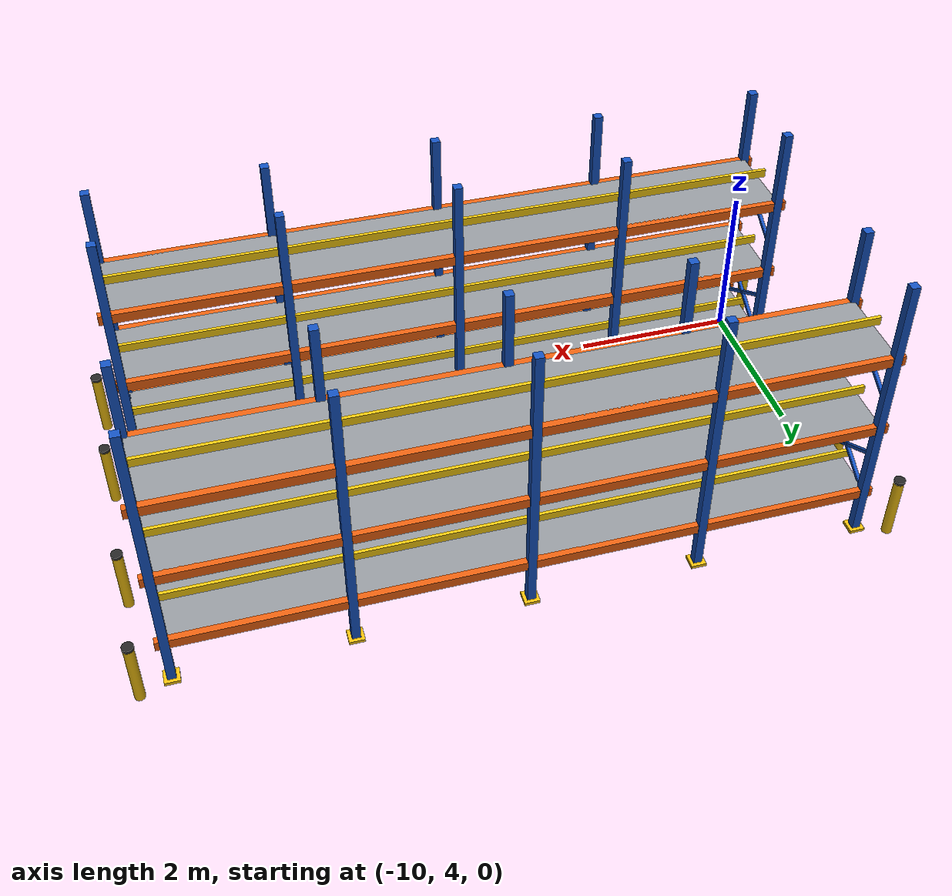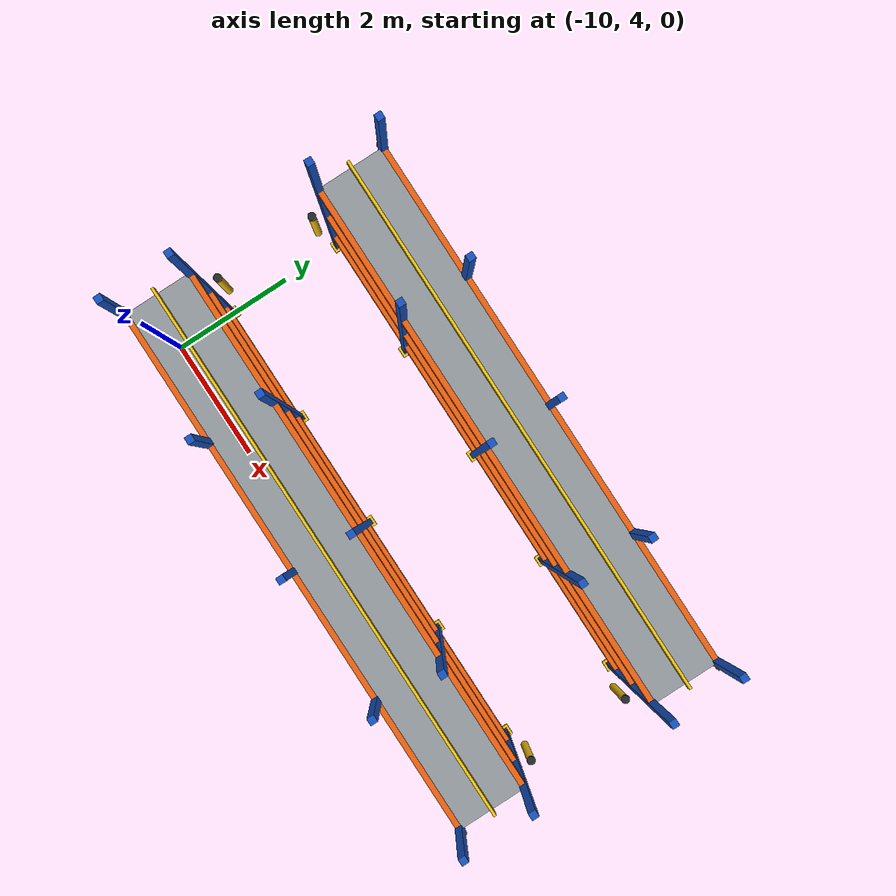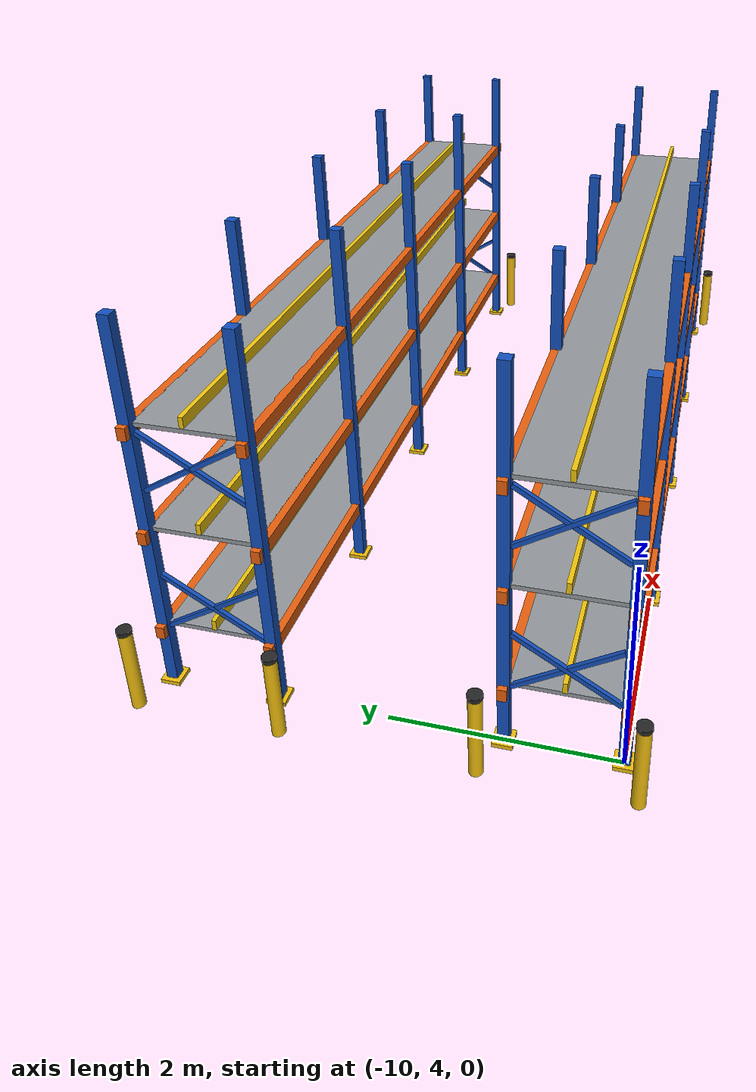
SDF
<sdf version="1.8">
 <world name="warehouse_3d">
  <model name="Rack_E">
   <static>true</static>
   <pose>-6.00 4.50 0 0 0 0</pose>
   <link name="col_0_0">
    <pose>-4.0000 -0.5000 1.8000 0.0000 0.0000 0.0000</pose>
    <collision name="col_0_0_col"><geometry><box><size>0.1000 0.1000 3.6000</size></box></geometry></collision>
    <visual name="col_0_0_vis">
     <geometry><box><size>0.1000 0.1000 3.6000</size></box></geometry>
     <material>
      <ambient>0.052 0.208 0.488 1.00</ambient>
      <diffuse>0.080 0.320 0.750 1.00</diffuse>
      <specular>0.15 0.15 0.15 1.0</specular>
     </material>
    </visual>
   </link>
   <link name="foot_0_0">
    <pose>-4.0000 -0.5000 0.0200 0.0000 0.0000 0.0000</pose>
    <collision name="foot_0_0_col"><geometry><box><size>0.1800 0.1800 0.0400</size></box></geometry></collision>
    <visual name="foot_0_0_vis">
     <geometry><box><size>0.1800 0.1800 0.0400</size></box></geometry>
     <material>
      <ambient>0.617 0.488 0.033 1.00</ambient>
      <diffuse>0.950 0.750 0.050 1.00</diffuse>
      <specular>0.15 0.15 0.15 1.0</specular>
     </material>
    </visual>
   </link>
   <link name="col_0_1">
    <pose>-4.0000 0.5000 1.8000 0.0000 0.0000 0.0000</pose>
    <collision name="col_0_1_col"><geometry><box><size>0.1000 0.1000 3.6000</size></box></geometry></collision>
    <visual name="col_0_1_vis">
     <geometry><box><size>0.1000 0.1000 3.6000</size></box></geometry>
     <material>
      <ambient>0.052 0.208 0.488 1.00</ambient>
      <diffuse>0.080 0.320 0.750 1.00</diffuse>
      <specular>0.15 0.15 0.15 1.0</specular>
     </material>
    </visual>
   </link>
   <link name="foot_0_1">
    <pose>-4.0000 0.5000 0.0200 0.0000 0.0000 0.0000</pose>
    <collision name="foot_0_1_col"><geometry><box><size>0.1800 0.1800 0.0400</size></box></geometry></collision>
    <visual name="foot_0_1_vis">
     <geometry><box><size>0.1800 0.1800 0.0400</size></box></geometry>
     <material>
      <ambient>0.617 0.488 0.033 1.00</ambient>
      <diffuse>0.950 0.750 0.050 1.00</diffuse>
      <specular>0.15 0.15 0.15 1.0</specular>
     </material>
    </visual>
   </link>
   <link name="col_1_0">
    <pose>-2.0000 -0.5000 1.8000 0.0000 0.0000 0.0000</pose>
    <collision name="col_1_0_col"><geometry><box><size>0.1000 0.1000 3.6000</size></box></geometry></collision>
    <visual name="col_1_0_vis">
     <geometry><box><size>0.1000 0.1000 3.6000</size></box></geometry>
     <material>
      <ambient>0.052 0.208 0.488 1.00</ambient>
      <diffuse>0.080 0.320 0.750 1.00</diffuse>
      <specular>0.15 0.15 0.15 1.0</specular>
     </material>
    </visual>
   </link>
   <link name="foot_1_0">
    <pose>-2.0000 -0.5000 0.0200 0.0000 0.0000 0.0000</pose>
    <collision name="foot_1_0_col"><geometry><box><size>0.1800 0.1800 0.0400</size></box></geometry></collision>
    <visual name="foot_1_0_vis">
     <geometry><box><size>0.1800 0.1800 0.0400</size></box></geometry>
     <material>
      <ambient>0.617 0.488 0.033 1.00</ambient>
      <diffuse>0.950 0.750 0.050 1.00</diffuse>
      <specular>0.15 0.15 0.15 1.0</specular>
     </material>
    </visual>
   </link>
   <link name="col_1_1">
    <pose>-2.0000 0.5000 1.8000 0.0000 0.0000 0.0000</pose>
    <collision name="col_1_1_col"><geometry><box><size>0.1000 0.1000 3.6000</size></box></geometry></collision>
    <visual name="col_1_1_vis">
     <geometry><box><size>0.1000 0.1000 3.6000</size></box></geometry>
     <material>
      <ambient>0.052 0.208 0.488 1.00</ambient>
      <diffuse>0.080 0.320 0.750 1.00</diffuse>
      <specular>0.15 0.15 0.15 1.0</specular>
     </material>
    </visual>
   </link>
   <link name="foot_1_1">
    <pose>-2.0000 0.5000 0.0200 0.0000 0.0000 0.0000</pose>
    <collision name="foot_1_1_col"><geometry><box><size>0.1800 0.1800 0.0400</size></box></geometry></collision>
    <visual name="foot_1_1_vis">
     <geometry><box><size>0.1800 0.1800 0.0400</size></box></geometry>
     <material>
      <ambient>0.617 0.488 0.033 1.00</ambient>
      <diffuse>0.950 0.750 0.050 1.00</diffuse>
      <specular>0.15 0.15 0.15 1.0</specular>
     </material>
    </visual>
   </link>
   <link name="col_2_0">
    <pose>0.0000 -0.5000 1.8000 0.0000 0.0000 0.0000</pose>
    <collision name="col_2_0_col"><geometry><box><size>0.1000 0.1000 3.6000</size></box></geometry></collision>
    <visual name="col_2_0_vis">
     <geometry><box><size>0.1000 0.1000 3.6000</size></box></geometry>
     <material>
      <ambient>0.052 0.208 0.488 1.00</ambient>
      <diffuse>0.080 0.320 0.750 1.00</diffuse>
      <specular>0.15 0.15 0.15 1.0</specular>
     </material>
    </visual>
   </link>
   <link name="foot_2_0">
    <pose>0.0000 -0.5000 0.0200 0.0000 0.0000 0.0000</pose>
    <collision name="foot_2_0_col"><geometry><box><size>0.1800 0.1800 0.0400</size></box></geometry></collision>
    <visual name="foot_2_0_vis">
     <geometry><box><size>0.1800 0.1800 0.0400</size></box></geometry>
     <material>
      <ambient>0.617 0.488 0.033 1.00</ambient>
      <diffuse>0.950 0.750 0.050 1.00</diffuse>
      <specular>0.15 0.15 0.15 1.0</specular>
     </material>
    </visual>
   </link>
   <link name="col_2_1">
    <pose>0.0000 0.5000 1.8000 0.0000 0.0000 0.0000</pose>
    <collision name="col_2_1_col"><geometry><box><size>0.1000 0.1000 3.6000</size></box></geometry></collision>
    <visual name="col_2_1_vis">
     <geometry><box><size>0.1000 0.1000 3.6000</size></box></geometry>
     <material>
      <ambient>0.052 0.208 0.488 1.00</ambient>
      <diffuse>0.080 0.320 0.750 1.00</diffuse>
      <specular>0.15 0.15 0.15 1.0</specular>
     </material>
    </visual>
   </link>
   <link name="foot_2_1">
    <pose>0.0000 0.5000 0.0200 0.0000 0.0000 0.0000</pose>
    <collision name="foot_2_1_col"><geometry><box><size>0.1800 0.1800 0.0400</size></box></geometry></collision>
    <visual name="foot_2_1_vis">
     <geometry><box><size>0.1800 0.1800 0.0400</size></box></geometry>
     <material>
      <ambient>0.617 0.488 0.033 1.00</ambient>
      <diffuse>0.950 0.750 0.050 1.00</diffuse>
      <specular>0.15 0.15 0.15 1.0</specular>
     </material>
    </visual>
   </link>
   <link name="col_3_0">
    <pose>2.0000 -0.5000 1.8000 0.0000 0.0000 0.0000</pose>
    <collision name="col_3_0_col"><geometry><box><size>0.1000 0.1000 3.6000</size></box></geometry></collision>
    <visual name="col_3_0_vis">
     <geometry><box><size>0.1000 0.1000 3.6000</size></box></geometry>
     <material>
      <ambient>0.052 0.208 0.488 1.00</ambient>
      <diffuse>0.080 0.320 0.750 1.00</diffuse>
      <specular>0.15 0.15 0.15 1.0</specular>
     </material>
    </visual>
   </link>
   <link name="foot_3_0">
    <pose>2.0000 -0.5000 0.0200 0.0000 0.0000 0.0000</pose>
    <collision name="foot_3_0_col"><geometry><box><size>0.1800 0.1800 0.0400</size></box></geometry></collision>
    <visual name="foot_3_0_vis">
     <geometry><box><size>0.1800 0.1800 0.0400</size></box></geometry>
     <material>
      <ambient>0.617 0.488 0.033 1.00</ambient>
      <diffuse>0.950 0.750 0.050 1.00</diffuse>
      <specular>0.15 0.15 0.15 1.0</specular>
     </material>
    </visual>
   </link>
   <link name="col_3_1">
    <pose>2.0000 0.5000 1.8000 0.0000 0.0000 0.0000</pose>
    <collision name="col_3_1_col"><geometry><box><size>0.1000 0.1000 3.6000</size></box></geometry></collision>
    <visual name="col_3_1_vis">
     <geometry><box><size>0.1000 0.1000 3.6000</size></box></geometry>
     <material>
      <ambient>0.052 0.208 0.488 1.00</ambient>
      <diffuse>0.080 0.320 0.750 1.00</diffuse>
      <specular>0.15 0.15 0.15 1.0</specular>
     </material>
    </visual>
   </link>
   <link name="foot_3_1">
    <pose>2.0000 0.5000 0.0200 0.0000 0.0000 0.0000</pose>
    <collision name="foot_3_1_col"><geometry><box><size>0.1800 0.1800 0.0400</size></box></geometry></collision>
    <visual name="foot_3_1_vis">
     <geometry><box><size>0.1800 0.1800 0.0400</size></box></geometry>
     <material>
      <ambient>0.617 0.488 0.033 1.00</ambient>
      <diffuse>0.950 0.750 0.050 1.00</diffuse>
      <specular>0.15 0.15 0.15 1.0</specular>
     </material>
    </visual>
   </link>
   <link name="col_4_0">
    <pose>4.0000 -0.5000 1.8000 0.0000 0.0000 0.0000</pose>
    <collision name="col_4_0_col"><geometry><box><size>0.1000 0.1000 3.6000</size></box></geometry></collision>
    <visual name="col_4_0_vis">
     <geometry><box><size>0.1000 0.1000 3.6000</size></box></geometry>
     <material>
      <ambient>0.052 0.208 0.488 1.00</ambient>
      <diffuse>0.080 0.320 0.750 1.00</diffuse>
      <specular>0.15 0.15 0.15 1.0</specular>
     </material>
    </visual>
   </link>
   <link name="foot_4_0">
    <pose>4.0000 -0.5000 0.0200 0.0000 0.0000 0.0000</pose>
    <collision name="foot_4_0_col"><geometry><box><size>0.1800 0.1800 0.0400</size></box></geometry></collision>
    <visual name="foot_4_0_vis">
     <geometry><box><size>0.1800 0.1800 0.0400</size></box></geometry>
     <material>
      <ambient>0.617 0.488 0.033 1.00</ambient>
      <diffuse>0.950 0.750 0.050 1.00</diffuse>
      <specular>0.15 0.15 0.15 1.0</specular>
     </material>
    </visual>
   </link>
   <link name="col_4_1">
    <pose>4.0000 0.5000 1.8000 0.0000 0.0000 0.0000</pose>
    <collision name="col_4_1_col"><geometry><box><size>0.1000 0.1000 3.6000</size></box></geometry></collision>
    <visual name="col_4_1_vis">
     <geometry><box><size>0.1000 0.1000 3.6000</size></box></geometry>
     <material>
      <ambient>0.052 0.208 0.488 1.00</ambient>
      <diffuse>0.080 0.320 0.750 1.00</diffuse>
      <specular>0.15 0.15 0.15 1.0</specular>
     </material>
    </visual>
   </link>
   <link name="foot_4_1">
    <pose>4.0000 0.5000 0.0200 0.0000 0.0000 0.0000</pose>
    <collision name="foot_4_1_col"><geometry><box><size>0.1800 0.1800 0.0400</size></box></geometry></collision>
    <visual name="foot_4_1_vis">
     <geometry><box><size>0.1800 0.1800 0.0400</size></box></geometry>
     <material>
      <ambient>0.617 0.488 0.033 1.00</ambient>
      <diffuse>0.950 0.750 0.050 1.00</diffuse>
      <specular>0.15 0.15 0.15 1.0</specular>
     </material>
    </visual>
   </link>
   <link name="x_brace_low_1_w">
    <pose>-4.0000 0.0000 0.9000 0.5500 0.0000 0.0000</pose>
    <visual name="x_brace_low_1_w_vis">
     <geometry><box><size>0.0400 1.0500 0.0400</size></box></geometry>
     <material>
      <ambient>0.052 0.208 0.488 1.00</ambient>
      <diffuse>0.080 0.320 0.750 1.00</diffuse>
      <specular>0.15 0.15 0.15 1.0</specular>
     </material>
    </visual>
   </link>
   <link name="x_brace_low_2_w">
    <pose>-4.0000 0.0000 0.9000 -0.5500 0.0000 0.0000</pose>
    <visual name="x_brace_low_2_w_vis">
     <geometry><box><size>0.0400 1.0500 0.0400</size></box></geometry>
     <material>
      <ambient>0.052 0.208 0.488 1.00</ambient>
      <diffuse>0.080 0.320 0.750 1.00</diffuse>
      <specular>0.15 0.15 0.15 1.0</specular>
     </material>
    </visual>
   </link>
   <link name="x_brace_hi_1_w">
    <pose>-4.0000 0.0000 2.3000 0.5500 0.0000 0.0000</pose>
    <visual name="x_brace_hi_1_w_vis">
     <geometry><box><size>0.0400 1.0500 0.0400</size></box></geometry>
     <material>
      <ambient>0.052 0.208 0.488 1.00</ambient>
      <diffuse>0.080 0.320 0.750 1.00</diffuse>
      <specular>0.15 0.15 0.15 1.0</specular>
     </material>
    </visual>
   </link>
   <link name="x_brace_hi_2_w">
    <pose>-4.0000 0.0000 2.3000 -0.5500 0.0000 0.0000</pose>
    <visual name="x_brace_hi_2_w_vis">
     <geometry><box><size>0.0400 1.0500 0.0400</size></box></geometry>
     <material>
      <ambient>0.052 0.208 0.488 1.00</ambient>
      <diffuse>0.080 0.320 0.750 1.00</diffuse>
      <specular>0.15 0.15 0.15 1.0</specular>
     </material>
    </visual>
   </link>
   <link name="x_brace_low_1_e">
    <pose>4.0000 0.0000 0.9000 0.5500 0.0000 0.0000</pose>
    <visual name="x_brace_low_1_e_vis">
     <geometry><box><size>0.0400 1.0500 0.0400</size></box></geometry>
     <material>
      <ambient>0.052 0.208 0.488 1.00</ambient>
      <diffuse>0.080 0.320 0.750 1.00</diffuse>
      <specular>0.15 0.15 0.15 1.0</specular>
     </material>
    </visual>
   </link>
   <link name="x_brace_low_2_e">
    <pose>4.0000 0.0000 0.9000 -0.5500 0.0000 0.0000</pose>
    <visual name="x_brace_low_2_e_vis">
     <geometry><box><size>0.0400 1.0500 0.0400</size></box></geometry>
     <material>
      <ambient>0.052 0.208 0.488 1.00</ambient>
      <diffuse>0.080 0.320 0.750 1.00</diffuse>
      <specular>0.15 0.15 0.15 1.0</specular>
     </material>
    </visual>
   </link>
   <link name="x_brace_hi_1_e">
    <pose>4.0000 0.0000 2.3000 0.5500 0.0000 0.0000</pose>
    <visual name="x_brace_hi_1_e_vis">
     <geometry><box><size>0.0400 1.0500 0.0400</size></box></geometry>
     <material>
      <ambient>0.052 0.208 0.488 1.00</ambient>
      <diffuse>0.080 0.320 0.750 1.00</diffuse>
      <specular>0.15 0.15 0.15 1.0</specular>
     </material>
    </visual>
   </link>
   <link name="x_brace_hi_2_e">
    <pose>4.0000 0.0000 2.3000 -0.5500 0.0000 0.0000</pose>
    <visual name="x_brace_hi_2_e_vis">
     <geometry><box><size>0.0400 1.0500 0.0400</size></box></geometry>
     <material>
      <ambient>0.052 0.208 0.488 1.00</ambient>
      <diffuse>0.080 0.320 0.750 1.00</diffuse>
      <specular>0.15 0.15 0.15 1.0</specular>
     </material>
    </visual>
   </link>
   <link name="beam_front_0">
    <pose>0.0000 0.5000 0.6000 0.0000 0.0000 0.0000</pose>
    <collision name="beam_front_0_col">
     <geometry><box><size>8.2000 0.0800 0.1200</size></box></geometry>
    </collision>
    <visual name="beam_front_0_vis">
     <geometry><box><size>8.2000 0.0800 0.1200</size></box></geometry>
     <material>
      <ambient>0.598 0.247 0.039 1.00</ambient>
      <diffuse>0.920 0.380 0.060 1.00</diffuse>
      <specular>0.15 0.15 0.15 1.0</specular>
     </material>
    </visual>
   </link>
   <link name="beam_rear_0">
    <pose>0.0000 -0.5000 0.6000 0.0000 0.0000 0.0000</pose>
    <collision name="beam_rear_0_col">
     <geometry><box><size>8.2000 0.0800 0.1200</size></box></geometry>
    </collision>
    <visual name="beam_rear_0_vis">
     <geometry><box><size>8.2000 0.0800 0.1200</size></box></geometry>
     <material>
      <ambient>0.598 0.247 0.039 1.00</ambient>
      <diffuse>0.920 0.380 0.060 1.00</diffuse>
      <specular>0.15 0.15 0.15 1.0</specular>
     </material>
    </visual>
   </link>
   <link name="deck_0">
    <pose>0.0000 0.0000 0.6400 0.0000 0.0000 0.0000</pose>
    <collision name="deck_0_col"><geometry><box><size>8.0000 0.9400 0.0400</size></box></geometry></collision>
    <visual name="deck_0_vis">
     <geometry><box><size>8.0000 0.9400 0.0400</size></box></geometry>
     <material>
      <ambient>0.377 0.390 0.403 1.00</ambient>
      <diffuse>0.580 0.600 0.620 1.00</diffuse>
      <specular>0.15 0.15 0.15 1.0</specular>
     </material>
    </visual>
   </link>
   <link name="backstop_0">
    <pose>0.0000 0.0000 0.7500 0.0000 0.0000 0.0000</pose>
    <visual name="backstop_0_vis">
     <geometry><box><size>8.1000 0.0400 0.1000</size></box></geometry>
     <material>
      <ambient>0.617 0.507 0.033 1.00</ambient>
      <diffuse>0.950 0.780 0.050 1.00</diffuse>
      <specular>0.15 0.15 0.15 1.0</specular>
     </material>
    </visual>
   </link>
   <link name="beam_front_1">
    <pose>0.0000 0.5000 1.6000 0.0000 0.0000 0.0000</pose>
    <collision name="beam_front_1_col">
     <geometry><box><size>8.2000 0.0800 0.1200</size></box></geometry>
    </collision>
    <visual name="beam_front_1_vis">
     <geometry><box><size>8.2000 0.0800 0.1200</size></box></geometry>
     <material>
      <ambient>0.598 0.247 0.039 1.00</ambient>
      <diffuse>0.920 0.380 0.060 1.00</diffuse>
      <specular>0.15 0.15 0.15 1.0</specular>
     </material>
    </visual>
   </link>
   <link name="beam_rear_1">
    <pose>0.0000 -0.5000 1.6000 0.0000 0.0000 0.0000</pose>
    <collision name="beam_rear_1_col">
     <geometry><box><size>8.2000 0.0800 0.1200</size></box></geometry>
    </collision>
    <visual name="beam_rear_1_vis">
     <geometry><box><size>8.2000 0.0800 0.1200</size></box></geometry>
     <material>
      <ambient>0.598 0.247 0.039 1.00</ambient>
      <diffuse>0.920 0.380 0.060 1.00</diffuse>
      <specular>0.15 0.15 0.15 1.0</specular>
     </material>
    </visual>
   </link>
   <link name="deck_1">
    <pose>0.0000 0.0000 1.6400 0.0000 0.0000 0.0000</pose>
    <collision name="deck_1_col"><geometry><box><size>8.0000 0.9400 0.0400</size></box></geometry></collision>
    <visual name="deck_1_vis">
     <geometry><box><size>8.0000 0.9400 0.0400</size></box></geometry>
     <material>
      <ambient>0.377 0.390 0.403 1.00</ambient>
      <diffuse>0.580 0.600 0.620 1.00</diffuse>
      <specular>0.15 0.15 0.15 1.0</specular>
     </material>
    </visual>
   </link>
   <link name="backstop_1">
    <pose>0.0000 0.0000 1.7500 0.0000 0.0000 0.0000</pose>
    <visual name="backstop_1_vis">
     <geometry><box><size>8.1000 0.0400 0.1000</size></box></geometry>
     <material>
      <ambient>0.617 0.507 0.033 1.00</ambient>
      <diffuse>0.950 0.780 0.050 1.00</diffuse>
      <specular>0.15 0.15 0.15 1.0</specular>
     </material>
    </visual>
   </link>
   <link name="beam_front_2">
    <pose>0.0000 0.5000 2.6000 0.0000 0.0000 0.0000</pose>
    <collision name="beam_front_2_col">
     <geometry><box><size>8.2000 0.0800 0.1200</size></box></geometry>
    </collision>
    <visual name="beam_front_2_vis">
     <geometry><box><size>8.2000 0.0800 0.1200</size></box></geometry>
     <material>
      <ambient>0.598 0.247 0.039 1.00</ambient>
      <diffuse>0.920 0.380 0.060 1.00</diffuse>
      <specular>0.15 0.15 0.15 1.0</specular>
     </material>
    </visual>
   </link>
   <link name="beam_rear_2">
    <pose>0.0000 -0.5000 2.6000 0.0000 0.0000 0.0000</pose>
    <collision name="beam_rear_2_col">
     <geometry><box><size>8.2000 0.0800 0.1200</size></box></geometry>
    </collision>
    <visual name="beam_rear_2_vis">
     <geometry><box><size>8.2000 0.0800 0.1200</size></box></geometry>
     <material>
      <ambient>0.598 0.247 0.039 1.00</ambient>
      <diffuse>0.920 0.380 0.060 1.00</diffuse>
      <specular>0.15 0.15 0.15 1.0</specular>
     </material>
    </visual>
   </link>
   <link name="deck_2">
    <pose>0.0000 0.0000 2.6400 0.0000 0.0000 0.0000</pose>
    <collision name="deck_2_col"><geometry><box><size>8.0000 0.9400 0.0400</size></box></geometry></collision>
    <visual name="deck_2_vis">
     <geometry><box><size>8.0000 0.9400 0.0400</size></box></geometry>
     <material>
      <ambient>0.377 0.390 0.403 1.00</ambient>
      <diffuse>0.580 0.600 0.620 1.00</diffuse>
      <specular>0.15 0.15 0.15 1.0</specular>
     </material>
    </visual>
   </link>
   <link name="backstop_2">
    <pose>0.0000 0.0000 2.7500 0.0000 0.0000 0.0000</pose>
    <visual name="backstop_2_vis">
     <geometry><box><size>8.1000 0.0400 0.1000</size></box></geometry>
     <material>
      <ambient>0.617 0.507 0.033 1.00</ambient>
      <diffuse>0.950 0.780 0.050 1.00</diffuse>
      <specular>0.15 0.15 0.15 1.0</specular>
     </material>
    </visual>
   </link>
   <link name="bollard_0">
    <pose>-4.3500 -0.6500 0.4000 0.0000 0.0000 0.0000</pose>
    <collision name="bollard_0_col">
     <geometry><cylinder><radius>0.0600</radius><length>0.8000</length></cylinder></geometry>
    </collision>
    <visual name="bollard_0_vis">
     <geometry><cylinder><radius>0.0600</radius><length>0.8000</length></cylinder></geometry>
     <material>
      <ambient>0.617 0.488 0.033 1.00</ambient>
      <diffuse>0.950 0.750 0.050 1.00</diffuse>
      <specular>0.2 0.2 0.2 1.0</specular>
     </material>
    </visual>
   </link>
   <link name="bollard_cap_0">
    <pose>-4.3500 -0.6500 0.8200 0.0000 0.0000 0.0000</pose>
    <collision name="bollard_cap_0_col">
     <geometry><cylinder><radius>0.0650</radius><length>0.0400</length></cylinder></geometry>
    </collision>
    <visual name="bollard_cap_0_vis">
     <geometry><cylinder><radius>0.0650</radius><length>0.0400</length></cylinder></geometry>
     <material>
      <ambient>0.098 0.098 0.098 1.00</ambient>
      <diffuse>0.150 0.150 0.150 1.00</diffuse>
      <specular>0.2 0.2 0.2 1.0</specular>
     </material>
    </visual>
   </link>
   <link name="bollard_1">
    <pose>-4.3500 0.6500 0.4000 0.0000 0.0000 0.0000</pose>
    <collision name="bollard_1_col">
     <geometry><cylinder><radius>0.0600</radius><length>0.8000</length></cylinder></geometry>
    </collision>
    <visual name="bollard_1_vis">
     <geometry><cylinder><radius>0.0600</radius><length>0.8000</length></cylinder></geometry>
     <material>
      <ambient>0.617 0.488 0.033 1.00</ambient>
      <diffuse>0.950 0.750 0.050 1.00</diffuse>
      <specular>0.2 0.2 0.2 1.0</specular>
     </material>
    </visual>
   </link>
   <link name="bollard_cap_1">
    <pose>-4.3500 0.6500 0.8200 0.0000 0.0000 0.0000</pose>
    <collision name="bollard_cap_1_col">
     <geometry><cylinder><radius>0.0650</radius><length>0.0400</length></cylinder></geometry>
    </collision>
    <visual name="bollard_cap_1_vis">
     <geometry><cylinder><radius>0.0650</radius><length>0.0400</length></cylinder></geometry>
     <material>
      <ambient>0.098 0.098 0.098 1.00</ambient>
      <diffuse>0.150 0.150 0.150 1.00</diffuse>
      <specular>0.2 0.2 0.2 1.0</specular>
     </material>
    </visual>
   </link>
   <link name="bollard_2">
    <pose>4.3500 -0.6500 0.4000 0.0000 0.0000 0.0000</pose>
    <collision name="bollard_2_col">
     <geometry><cylinder><radius>0.0600</radius><length>0.8000</length></cylinder></geometry>
    </collision>
    <visual name="bollard_2_vis">
     <geometry><cylinder><radius>0.0600</radius><length>0.8000</length></cylinder></geometry>
     <material>
      <ambient>0.617 0.488 0.033 1.00</ambient>
      <diffuse>0.950 0.750 0.050 1.00</diffuse>
      <specular>0.2 0.2 0.2 1.0</specular>
     </material>
    </visual>
   </link>
   <link name="bollard_cap_2">
    <pose>4.3500 -0.6500 0.8200 0.0000 0.0000 0.0000</pose>
    <collision name="bollard_cap_2_col">
     <geometry><cylinder><radius>0.0650</radius><length>0.0400</length></cylinder></geometry>
    </collision>
    <visual name="bollard_cap_2_vis">
     <geometry><cylinder><radius>0.0650</radius><length>0.0400</length></cylinder></geometry>
     <material>
      <ambient>0.098 0.098 0.098 1.00</ambient>
      <diffuse>0.150 0.150 0.150 1.00</diffuse>
      <specular>0.2 0.2 0.2 1.0</specular>
     </material>
    </visual>
   </link>
   <link name="bollard_3">
    <pose>4.3500 0.6500 0.4000 0.0000 0.0000 0.0000</pose>
    <collision name="bollard_3_col">
     <geometry><cylinder><radius>0.0600</radius><length>0.8000</length></cylinder></geometry>
    </collision>
    <visual name="bollard_3_vis">
     <geometry><cylinder><radius>0.0600</radius><length>0.8000</length></cylinder></geometry>
     <material>
      <ambient>0.617 0.488 0.033 1.00</ambient>
      <diffuse>0.950 0.750 0.050 1.00</diffuse>
      <specular>0.2 0.2 0.2 1.0</specular>
     </material>
    </visual>
   </link>
   <link name="bollard_cap_3">
    <pose>4.3500 0.6500 0.8200 0.0000 0.0000 0.0000</pose>
    <collision name="bollard_cap_3_col">
     <geometry><cylinder><radius>0.0650</radius><length>0.0400</length></cylinder></geometry>
    </collision>
    <visual name="bollard_cap_3_vis">
     <geometry><cylinder><radius>0.0650</radius><length>0.0400</length></cylinder></geometry>
     <material>
      <ambient>0.098 0.098 0.098 1.00</ambient>
      <diffuse>0.150 0.150 0.150 1.00</diffuse>
      <specular>0.2 0.2 0.2 1.0</specular>
     </material>
    </visual>
   </link>
  </model>
  <model name="Rack_F">
   <static>true</static>
   <pose>-6.00 7.50 0 0 0 0</pose>
   <link name="col_0_0">
    <pose>-4.0000 -0.5000 1.8000 0.0000 0.0000 0.0000</pose>
    <collision name="col_0_0_col"><geometry><box><size>0.1000 0.1000 3.6000</size></box></geometry></collision>
    <visual name="col_0_0_vis">
     <geometry><box><size>0.1000 0.1000 3.6000</size></box></geometry>
     <material>
      <ambient>0.052 0.208 0.488 1.00</ambient>
      <diffuse>0.080 0.320 0.750 1.00</diffuse>
      <specular>0.15 0.15 0.15 1.0</specular>
     </material>
    </visual>
   </link>
   <link name="foot_0_0">
    <pose>-4.0000 -0.5000 0.0200 0.0000 0.0000 0.0000</pose>
    <collision name="foot_0_0_col"><geometry><box><size>0.1800 0.1800 0.0400</size></box></geometry></collision>
    <visual name="foot_0_0_vis">
     <geometry><box><size>0.1800 0.1800 0.0400</size></box></geometry>
     <material>
      <ambient>0.617 0.488 0.033 1.00</ambient>
      <diffuse>0.950 0.750 0.050 1.00</diffuse>
      <specular>0.15 0.15 0.15 1.0</specular>
     </material>
    </visual>
   </link>
   <link name="col_0_1">
    <pose>-4.0000 0.5000 1.8000 0.0000 0.0000 0.0000</pose>
    <collision name="col_0_1_col"><geometry><box><size>0.1000 0.1000 3.6000</size></box></geometry></collision>
    <visual name="col_0_1_vis">
     <geometry><box><size>0.1000 0.1000 3.6000</size></box></geometry>
     <material>
      <ambient>0.052 0.208 0.488 1.00</ambient>
      <diffuse>0.080 0.320 0.750 1.00</diffuse>
      <specular>0.15 0.15 0.15 1.0</specular>
     </material>
    </visual>
   </link>
   <link name="foot_0_1">
    <pose>-4.0000 0.5000 0.0200 0.0000 0.0000 0.0000</pose>
    <collision name="foot_0_1_col"><geometry><box><size>0.1800 0.1800 0.0400</size></box></geometry></collision>
    <visual name="foot_0_1_vis">
     <geometry><box><size>0.1800 0.1800 0.0400</size></box></geometry>
     <material>
      <ambient>0.617 0.488 0.033 1.00</ambient>
      <diffuse>0.950 0.750 0.050 1.00</diffuse>
      <specular>0.15 0.15 0.15 1.0</specular>
     </material>
    </visual>
   </link>
   <link name="col_1_0">
    <pose>-2.0000 -0.5000 1.8000 0.0000 0.0000 0.0000</pose>
    <collision name="col_1_0_col"><geometry><box><size>0.1000 0.1000 3.6000</size></box></geometry></collision>
    <visual name="col_1_0_vis">
     <geometry><box><size>0.1000 0.1000 3.6000</size></box></geometry>
     <material>
      <ambient>0.052 0.208 0.488 1.00</ambient>
      <diffuse>0.080 0.320 0.750 1.00</diffuse>
      <specular>0.15 0.15 0.15 1.0</specular>
     </material>
    </visual>
   </link>
   <link name="foot_1_0">
    <pose>-2.0000 -0.5000 0.0200 0.0000 0.0000 0.0000</pose>
    <collision name="foot_1_0_col"><geometry><box><size>0.1800 0.1800 0.0400</size></box></geometry></collision>
    <visual name="foot_1_0_vis">
     <geometry><box><size>0.1800 0.1800 0.0400</size></box></geometry>
     <material>
      <ambient>0.617 0.488 0.033 1.00</ambient>
      <diffuse>0.950 0.750 0.050 1.00</diffuse>
      <specular>0.15 0.15 0.15 1.0</specular>
     </material>
    </visual>
   </link>
   <link name="col_1_1">
    <pose>-2.0000 0.5000 1.8000 0.0000 0.0000 0.0000</pose>
    <collision name="col_1_1_col"><geometry><box><size>0.1000 0.1000 3.6000</size></box></geometry></collision>
    <visual name="col_1_1_vis">
     <geometry><box><size>0.1000 0.1000 3.6000</size></box></geometry>
     <material>
      <ambient>0.052 0.208 0.488 1.00</ambient>
      <diffuse>0.080 0.320 0.750 1.00</diffuse>
      <specular>0.15 0.15 0.15 1.0</specular>
     </material>
    </visual>
   </link>
   <link name="foot_1_1">
    <pose>-2.0000 0.5000 0.0200 0.0000 0.0000 0.0000</pose>
    <collision name="foot_1_1_col"><geometry><box><size>0.1800 0.1800 0.0400</size></box></geometry></collision>
    <visual name="foot_1_1_vis">
     <geometry><box><size>0.1800 0.1800 0.0400</size></box></geometry>
     <material>
      <ambient>0.617 0.488 0.033 1.00</ambient>
      <diffuse>0.950 0.750 0.050 1.00</diffuse>
      <specular>0.15 0.15 0.15 1.0</specular>
     </material>
    </visual>
   </link>
   <link name="col_2_0">
    <pose>0.0000 -0.5000 1.8000 0.0000 0.0000 0.0000</pose>
    <collision name="col_2_0_col"><geometry><box><size>0.1000 0.1000 3.6000</size></box></geometry></collision>
    <visual name="col_2_0_vis">
     <geometry><box><size>0.1000 0.1000 3.6000</size></box></geometry>
     <material>
      <ambient>0.052 0.208 0.488 1.00</ambient>
      <diffuse>0.080 0.320 0.750 1.00</diffuse>
      <specular>0.15 0.15 0.15 1.0</specular>
     </material>
    </visual>
   </link>
   <link name="foot_2_0">
    <pose>0.0000 -0.5000 0.0200 0.0000 0.0000 0.0000</pose>
    <collision name="foot_2_0_col"><geometry><box><size>0.1800 0.1800 0.0400</size></box></geometry></collision>
    <visual name="foot_2_0_vis">
     <geometry><box><size>0.1800 0.1800 0.0400</size></box></geometry>
     <material>
      <ambient>0.617 0.488 0.033 1.00</ambient>
      <diffuse>0.950 0.750 0.050 1.00</diffuse>
      <specular>0.15 0.15 0.15 1.0</specular>
     </material>
    </visual>
   </link>
   <link name="col_2_1">
    <pose>0.0000 0.5000 1.8000 0.0000 0.0000 0.0000</pose>
    <collision name="col_2_1_col"><geometry><box><size>0.1000 0.1000 3.6000</size></box></geometry></collision>
    <visual name="col_2_1_vis">
     <geometry><box><size>0.1000 0.1000 3.6000</size></box></geometry>
     <material>
      <ambient>0.052 0.208 0.488 1.00</ambient>
      <diffuse>0.080 0.320 0.750 1.00</diffuse>
      <specular>0.15 0.15 0.15 1.0</specular>
     </material>
    </visual>
   </link>
   <link name="foot_2_1">
    <pose>0.0000 0.5000 0.0200 0.0000 0.0000 0.0000</pose>
    <collision name="foot_2_1_col"><geometry><box><size>0.1800 0.1800 0.0400</size></box></geometry></collision>
    <visual name="foot_2_1_vis">
     <geometry><box><size>0.1800 0.1800 0.0400</size></box></geometry>
     <material>
      <ambient>0.617 0.488 0.033 1.00</ambient>
      <diffuse>0.950 0.750 0.050 1.00</diffuse>
      <specular>0.15 0.15 0.15 1.0</specular>
     </material>
    </visual>
   </link>
   <link name="col_3_0">
    <pose>2.0000 -0.5000 1.8000 0.0000 0.0000 0.0000</pose>
    <collision name="col_3_0_col"><geometry><box><size>0.1000 0.1000 3.6000</size></box></geometry></collision>
    <visual name="col_3_0_vis">
     <geometry><box><size>0.1000 0.1000 3.6000</size></box></geometry>
     <material>
      <ambient>0.052 0.208 0.488 1.00</ambient>
      <diffuse>0.080 0.320 0.750 1.00</diffuse>
      <specular>0.15 0.15 0.15 1.0</specular>
     </material>
    </visual>
   </link>
   <link name="foot_3_0">
    <pose>2.0000 -0.5000 0.0200 0.0000 0.0000 0.0000</pose>
    <collision name="foot_3_0_col"><geometry><box><size>0.1800 0.1800 0.0400</size></box></geometry></collision>
    <visual name="foot_3_0_vis">
     <geometry><box><size>0.1800 0.1800 0.0400</size></box></geometry>
     <material>
      <ambient>0.617 0.488 0.033 1.00</ambient>
      <diffuse>0.950 0.750 0.050 1.00</diffuse>
      <specular>0.15 0.15 0.15 1.0</specular>
     </material>
    </visual>
   </link>
   <link name="col_3_1">
    <pose>2.0000 0.5000 1.8000 0.0000 0.0000 0.0000</pose>
    <collision name="col_3_1_col"><geometry><box><size>0.1000 0.1000 3.6000</size></box></geometry></collision>
    <visual name="col_3_1_vis">
     <geometry><box><size>0.1000 0.1000 3.6000</size></box></geometry>
     <material>
      <ambient>0.052 0.208 0.488 1.00</ambient>
      <diffuse>0.080 0.320 0.750 1.00</diffuse>
      <specular>0.15 0.15 0.15 1.0</specular>
     </material>
    </visual>
   </link>
   <link name="foot_3_1">
    <pose>2.0000 0.5000 0.0200 0.0000 0.0000 0.0000</pose>
    <collision name="foot_3_1_col"><geometry><box><size>0.1800 0.1800 0.0400</size></box></geometry></collision>
    <visual name="foot_3_1_vis">
     <geometry><box><size>0.1800 0.1800 0.0400</size></box></geometry>
     <material>
      <ambient>0.617 0.488 0.033 1.00</ambient>
      <diffuse>0.950 0.750 0.050 1.00</diffuse>
      <specular>0.15 0.15 0.15 1.0</specular>
     </material>
    </visual>
   </link>
   <link name="col_4_0">
    <pose>4.0000 -0.5000 1.8000 0.0000 0.0000 0.0000</pose>
    <collision name="col_4_0_col"><geometry><box><size>0.1000 0.1000 3.6000</size></box></geometry></collision>
    <visual name="col_4_0_vis">
     <geometry><box><size>0.1000 0.1000 3.6000</size></box></geometry>
     <material>
      <ambient>0.052 0.208 0.488 1.00</ambient>
      <diffuse>0.080 0.320 0.750 1.00</diffuse>
      <specular>0.15 0.15 0.15 1.0</specular>
     </material>
    </visual>
   </link>
   <link name="foot_4_0">
    <pose>4.0000 -0.5000 0.0200 0.0000 0.0000 0.0000</pose>
    <collision name="foot_4_0_col"><geometry><box><size>0.1800 0.1800 0.0400</size></box></geometry></collision>
    <visual name="foot_4_0_vis">
     <geometry><box><size>0.1800 0.1800 0.0400</size></box></geometry>
     <material>
      <ambient>0.617 0.488 0.033 1.00</ambient>
      <diffuse>0.950 0.750 0.050 1.00</diffuse>
      <specular>0.15 0.15 0.15 1.0</specular>
     </material>
    </visual>
   </link>
   <link name="col_4_1">
    <pose>4.0000 0.5000 1.8000 0.0000 0.0000 0.0000</pose>
    <collision name="col_4_1_col"><geometry><box><size>0.1000 0.1000 3.6000</size></box></geometry></collision>
    <visual name="col_4_1_vis">
     <geometry><box><size>0.1000 0.1000 3.6000</size></box></geometry>
     <material>
      <ambient>0.052 0.208 0.488 1.00</ambient>
      <diffuse>0.080 0.320 0.750 1.00</diffuse>
      <specular>0.15 0.15 0.15 1.0</specular>
     </material>
    </visual>
   </link>
   <link name="foot_4_1">
    <pose>4.0000 0.5000 0.0200 0.0000 0.0000 0.0000</pose>
    <collision name="foot_4_1_col"><geometry><box><size>0.1800 0.1800 0.0400</size></box></geometry></collision>
    <visual name="foot_4_1_vis">
     <geometry><box><size>0.1800 0.1800 0.0400</size></box></geometry>
     <material>
      <ambient>0.617 0.488 0.033 1.00</ambient>
      <diffuse>0.950 0.750 0.050 1.00</diffuse>
      <specular>0.15 0.15 0.15 1.0</specular>
     </material>
    </visual>
   </link>
   <link name="x_brace_low_1_w">
    <pose>-4.0000 0.0000 0.9000 0.5500 0.0000 0.0000</pose>
    <visual name="x_brace_low_1_w_vis">
     <geometry><box><size>0.0400 1.0500 0.0400</size></box></geometry>
     <material>
      <ambient>0.052 0.208 0.488 1.00</ambient>
      <diffuse>0.080 0.320 0.750 1.00</diffuse>
      <specular>0.15 0.15 0.15 1.0</specular>
     </material>
    </visual>
   </link>
   <link name="x_brace_low_2_w">
    <pose>-4.0000 0.0000 0.9000 -0.5500 0.0000 0.0000</pose>
    <visual name="x_brace_low_2_w_vis">
     <geometry><box><size>0.0400 1.0500 0.0400</size></box></geometry>
     <material>
      <ambient>0.052 0.208 0.488 1.00</ambient>
      <diffuse>0.080 0.320 0.750 1.00</diffuse>
      <specular>0.15 0.15 0.15 1.0</specular>
     </material>
    </visual>
   </link>
   <link name="x_brace_hi_1_w">
    <pose>-4.0000 0.0000 2.3000 0.5500 0.0000 0.0000</pose>
    <visual name="x_brace_hi_1_w_vis">
     <geometry><box><size>0.0400 1.0500 0.0400</size></box></geometry>
     <material>
      <ambient>0.052 0.208 0.488 1.00</ambient>
      <diffuse>0.080 0.320 0.750 1.00</diffuse>
      <specular>0.15 0.15 0.15 1.0</specular>
     </material>
    </visual>
   </link>
   <link name="x_brace_hi_2_w">
    <pose>-4.0000 0.0000 2.3000 -0.5500 0.0000 0.0000</pose>
    <visual name="x_brace_hi_2_w_vis">
     <geometry><box><size>0.0400 1.0500 0.0400</size></box></geometry>
     <material>
      <ambient>0.052 0.208 0.488 1.00</ambient>
      <diffuse>0.080 0.320 0.750 1.00</diffuse>
      <specular>0.15 0.15 0.15 1.0</specular>
     </material>
    </visual>
   </link>
   <link name="x_brace_low_1_e">
    <pose>4.0000 0.0000 0.9000 0.5500 0.0000 0.0000</pose>
    <visual name="x_brace_low_1_e_vis">
     <geometry><box><size>0.0400 1.0500 0.0400</size></box></geometry>
     <material>
      <ambient>0.052 0.208 0.488 1.00</ambient>
      <diffuse>0.080 0.320 0.750 1.00</diffuse>
      <specular>0.15 0.15 0.15 1.0</specular>
     </material>
    </visual>
   </link>
   <link name="x_brace_low_2_e">
    <pose>4.0000 0.0000 0.9000 -0.5500 0.0000 0.0000</pose>
    <visual name="x_brace_low_2_e_vis">
     <geometry><box><size>0.0400 1.0500 0.0400</size></box></geometry>
     <material>
      <ambient>0.052 0.208 0.488 1.00</ambient>
      <diffuse>0.080 0.320 0.750 1.00</diffuse>
      <specular>0.15 0.15 0.15 1.0</specular>
     </material>
    </visual>
   </link>
   <link name="x_brace_hi_1_e">
    <pose>4.0000 0.0000 2.3000 0.5500 0.0000 0.0000</pose>
    <visual name="x_brace_hi_1_e_vis">
     <geometry><box><size>0.0400 1.0500 0.0400</size></box></geometry>
     <material>
      <ambient>0.052 0.208 0.488 1.00</ambient>
      <diffuse>0.080 0.320 0.750 1.00</diffuse>
      <specular>0.15 0.15 0.15 1.0</specular>
     </material>
    </visual>
   </link>
   <link name="x_brace_hi_2_e">
    <pose>4.0000 0.0000 2.3000 -0.5500 0.0000 0.0000</pose>
    <visual name="x_brace_hi_2_e_vis">
     <geometry><box><size>0.0400 1.0500 0.0400</size></box></geometry>
     <material>
      <ambient>0.052 0.208 0.488 1.00</ambient>
      <diffuse>0.080 0.320 0.750 1.00</diffuse>
      <specular>0.15 0.15 0.15 1.0</specular>
     </material>
    </visual>
   </link>
   <link name="beam_front_0">
    <pose>0.0000 0.5000 0.6000 0.0000 0.0000 0.0000</pose>
    <collision name="beam_front_0_col">
     <geometry><box><size>8.2000 0.0800 0.1200</size></box></geometry>
    </collision>
    <visual name="beam_front_0_vis">
     <geometry><box><size>8.2000 0.0800 0.1200</size></box></geometry>
     <material>
      <ambient>0.598 0.247 0.039 1.00</ambient>
      <diffuse>0.920 0.380 0.060 1.00</diffuse>
      <specular>0.15 0.15 0.15 1.0</specular>
     </material>
    </visual>
   </link>
   <link name="beam_rear_0">
    <pose>0.0000 -0.5000 0.6000 0.0000 0.0000 0.0000</pose>
    <collision name="beam_rear_0_col">
     <geometry><box><size>8.2000 0.0800 0.1200</size></box></geometry>
    </collision>
    <visual name="beam_rear_0_vis">
     <geometry><box><size>8.2000 0.0800 0.1200</size></box></geometry>
     <material>
      <ambient>0.598 0.247 0.039 1.00</ambient>
      <diffuse>0.920 0.380 0.060 1.00</diffuse>
      <specular>0.15 0.15 0.15 1.0</specular>
     </material>
    </visual>
   </link>
   <link name="deck_0">
    <pose>0.0000 0.0000 0.6400 0.0000 0.0000 0.0000</pose>
    <collision name="deck_0_col"><geometry><box><size>8.0000 0.9400 0.0400</size></box></geometry></collision>
    <visual name="deck_0_vis">
     <geometry><box><size>8.0000 0.9400 0.0400</size></box></geometry>
     <material>
      <ambient>0.377 0.390 0.403 1.00</ambient>
      <diffuse>0.580 0.600 0.620 1.00</diffuse>
      <specular>0.15 0.15 0.15 1.0</specular>
     </material>
    </visual>
   </link>
   <link name="backstop_0">
    <pose>0.0000 0.0000 0.7500 0.0000 0.0000 0.0000</pose>
    <visual name="backstop_0_vis">
     <geometry><box><size>8.1000 0.0400 0.1000</size></box></geometry>
     <material>
      <ambient>0.617 0.507 0.033 1.00</ambient>
      <diffuse>0.950 0.780 0.050 1.00</diffuse>
      <specular>0.15 0.15 0.15 1.0</specular>
     </material>
    </visual>
   </link>
   <link name="beam_front_1">
    <pose>0.0000 0.5000 1.6000 0.0000 0.0000 0.0000</pose>
    <collision name="beam_front_1_col">
     <geometry><box><size>8.2000 0.0800 0.1200</size></box></geometry>
    </collision>
    <visual name="beam_front_1_vis">
     <geometry><box><size>8.2000 0.0800 0.1200</size></box></geometry>
     <material>
      <ambient>0.598 0.247 0.039 1.00</ambient>
      <diffuse>0.920 0.380 0.060 1.00</diffuse>
      <specular>0.15 0.15 0.15 1.0</specular>
     </material>
    </visual>
   </link>
   <link name="beam_rear_1">
    <pose>0.0000 -0.5000 1.6000 0.0000 0.0000 0.0000</pose>
    <collision name="beam_rear_1_col">
     <geometry><box><size>8.2000 0.0800 0.1200</size></box></geometry>
    </collision>
    <visual name="beam_rear_1_vis">
     <geometry><box><size>8.2000 0.0800 0.1200</size></box></geometry>
     <material>
      <ambient>0.598 0.247 0.039 1.00</ambient>
      <diffuse>0.920 0.380 0.060 1.00</diffuse>
      <specular>0.15 0.15 0.15 1.0</specular>
     </material>
    </visual>
   </link>
   <link name="deck_1">
    <pose>0.0000 0.0000 1.6400 0.0000 0.0000 0.0000</pose>
    <collision name="deck_1_col"><geometry><box><size>8.0000 0.9400 0.0400</size></box></geometry></collision>
    <visual name="deck_1_vis">
     <geometry><box><size>8.0000 0.9400 0.0400</size></box></geometry>
     <material>
      <ambient>0.377 0.390 0.403 1.00</ambient>
      <diffuse>0.580 0.600 0.620 1.00</diffuse>
      <specular>0.15 0.15 0.15 1.0</specular>
     </material>
    </visual>
   </link>
   <link name="backstop_1">
    <pose>0.0000 0.0000 1.7500 0.0000 0.0000 0.0000</pose>
    <visual name="backstop_1_vis">
     <geometry><box><size>8.1000 0.0400 0.1000</size></box></geometry>
     <material>
      <ambient>0.617 0.507 0.033 1.00</ambient>
      <diffuse>0.950 0.780 0.050 1.00</diffuse>
      <specular>0.15 0.15 0.15 1.0</specular>
     </material>
    </visual>
   </link>
   <link name="beam_front_2">
    <pose>0.0000 0.5000 2.6000 0.0000 0.0000 0.0000</pose>
    <collision name="beam_front_2_col">
     <geometry><box><size>8.2000 0.0800 0.1200</size></box></geometry>
    </collision>
    <visual name="beam_front_2_vis">
     <geometry><box><size>8.2000 0.0800 0.1200</size></box></geometry>
     <material>
      <ambient>0.598 0.247 0.039 1.00</ambient>
      <diffuse>0.920 0.380 0.060 1.00</diffuse>
      <specular>0.15 0.15 0.15 1.0</specular>
     </material>
    </visual>
   </link>
   <link name="beam_rear_2">
    <pose>0.0000 -0.5000 2.6000 0.0000 0.0000 0.0000</pose>
    <collision name="beam_rear_2_col">
     <geometry><box><size>8.2000 0.0800 0.1200</size></box></geometry>
    </collision>
    <visual name="beam_rear_2_vis">
     <geometry><box><size>8.2000 0.0800 0.1200</size></box></geometry>
     <material>
      <ambient>0.598 0.247 0.039 1.00</ambient>
      <diffuse>0.920 0.380 0.060 1.00</diffuse>
      <specular>0.15 0.15 0.15 1.0</specular>
     </material>
    </visual>
   </link>
   <link name="deck_2">
    <pose>0.0000 0.0000 2.6400 0.0000 0.0000 0.0000</pose>
    <collision name="deck_2_col"><geometry><box><size>8.0000 0.9400 0.0400</size></box></geometry></collision>
    <visual name="deck_2_vis">
     <geometry><box><size>8.0000 0.9400 0.0400</size></box></geometry>
     <material>
      <ambient>0.377 0.390 0.403 1.00</ambient>
      <diffuse>0.580 0.600 0.620 1.00</diffuse>
      <specular>0.15 0.15 0.15 1.0</specular>
     </material>
    </visual>
   </link>
   <link name="backstop_2">
    <pose>0.0000 0.0000 2.7500 0.0000 0.0000 0.0000</pose>
    <visual name="backstop_2_vis">
     <geometry><box><size>8.1000 0.0400 0.1000</size></box></geometry>
     <material>
      <ambient>0.617 0.507 0.033 1.00</ambient>
      <diffuse>0.950 0.780 0.050 1.00</diffuse>
      <specular>0.15 0.15 0.15 1.0</specular>
     </material>
    </visual>
   </link>
   <link name="bollard_0">
    <pose>-4.3500 -0.6500 0.4000 0.0000 0.0000 0.0000</pose>
    <collision name="bollard_0_col">
     <geometry><cylinder><radius>0.0600</radius><length>0.8000</length></cylinder></geometry>
    </collision>
    <visual name="bollard_0_vis">
     <geometry><cylinder><radius>0.0600</radius><length>0.8000</length></cylinder></geometry>
     <material>
      <ambient>0.617 0.488 0.033 1.00</ambient>
      <diffuse>0.950 0.750 0.050 1.00</diffuse>
      <specular>0.2 0.2 0.2 1.0</specular>
     </material>
    </visual>
   </link>
   <link name="bollard_cap_0">
    <pose>-4.3500 -0.6500 0.8200 0.0000 0.0000 0.0000</pose>
    <collision name="bollard_cap_0_col">
     <geometry><cylinder><radius>0.0650</radius><length>0.0400</length></cylinder></geometry>
    </collision>
    <visual name="bollard_cap_0_vis">
     <geometry><cylinder><radius>0.0650</radius><length>0.0400</length></cylinder></geometry>
     <material>
      <ambient>0.098 0.098 0.098 1.00</ambient>
      <diffuse>0.150 0.150 0.150 1.00</diffuse>
      <specular>0.2 0.2 0.2 1.0</specular>
     </material>
    </visual>
   </link>
   <link name="bollard_1">
    <pose>-4.3500 0.6500 0.4000 0.0000 0.0000 0.0000</pose>
    <collision name="bollard_1_col">
     <geometry><cylinder><radius>0.0600</radius><length>0.8000</length></cylinder></geometry>
    </collision>
    <visual name="bollard_1_vis">
     <geometry><cylinder><radius>0.0600</radius><length>0.8000</length></cylinder></geometry>
     <material>
      <ambient>0.617 0.488 0.033 1.00</ambient>
      <diffuse>0.950 0.750 0.050 1.00</diffuse>
      <specular>0.2 0.2 0.2 1.0</specular>
     </material>
    </visual>
   </link>
   <link name="bollard_cap_1">
    <pose>-4.3500 0.6500 0.8200 0.0000 0.0000 0.0000</pose>
    <collision name="bollard_cap_1_col">
     <geometry><cylinder><radius>0.0650</radius><length>0.0400</length></cylinder></geometry>
    </collision>
    <visual name="bollard_cap_1_vis">
     <geometry><cylinder><radius>0.0650</radius><length>0.0400</length></cylinder></geometry>
     <material>
      <ambient>0.098 0.098 0.098 1.00</ambient>
      <diffuse>0.150 0.150 0.150 1.00</diffuse>
      <specular>0.2 0.2 0.2 1.0</specular>
     </material>
    </visual>
   </link>
   <link name="bollard_2">
    <pose>4.3500 -0.6500 0.4000 0.0000 0.0000 0.0000</pose>
    <collision name="bollard_2_col">
     <geometry><cylinder><radius>0.0600</radius><length>0.8000</length></cylinder></geometry>
    </collision>
    <visual name="bollard_2_vis">
     <geometry><cylinder><radius>0.0600</radius><length>0.8000</length></cylinder></geometry>
     <material>
      <ambient>0.617 0.488 0.033 1.00</ambient>
      <diffuse>0.950 0.750 0.050 1.00</diffuse>
      <specular>0.2 0.2 0.2 1.0</specular>
     </material>
    </visual>
   </link>
   <link name="bollard_cap_2">
    <pose>4.3500 -0.6500 0.8200 0.0000 0.0000 0.0000</pose>
    <collision name="bollard_cap_2_col">
     <geometry><cylinder><radius>0.0650</radius><length>0.0400</length></cylinder></geometry>
    </collision>
    <visual name="bollard_cap_2_vis">
     <geometry><cylinder><radius>0.0650</radius><length>0.0400</length></cylinder></geometry>
     <material>
      <ambient>0.098 0.098 0.098 1.00</ambient>
      <diffuse>0.150 0.150 0.150 1.00</diffuse>
      <specular>0.2 0.2 0.2 1.0</specular>
     </material>
    </visual>
   </link>
   <link name="bollard_3">
    <pose>4.3500 0.6500 0.4000 0.0000 0.0000 0.0000</pose>
    <collision name="bollard_3_col">
     <geometry><cylinder><radius>0.0600</radius><length>0.8000</length></cylinder></geometry>
    </collision>
    <visual name="bollard_3_vis">
     <geometry><cylinder><radius>0.0600</radius><length>0.8000</length></cylinder></geometry>
     <material>
      <ambient>0.617 0.488 0.033 1.00</ambient>
      <diffuse>0.950 0.750 0.050 1.00</diffuse>
      <specular>0.2 0.2 0.2 1.0</specular>
     </material>
    </visual>
   </link>
   <link name="bollard_cap_3">
    <pose>4.3500 0.6500 0.8200 0.0000 0.0000 0.0000</pose>
    <collision name="bollard_cap_3_col">
     <geometry><cylinder><radius>0.0650</radius><length>0.0400</length></cylinder></geometry>
    </collision>
    <visual name="bollard_cap_3_vis">
     <geometry><cylinder><radius>0.0650</radius><length>0.0400</length></cylinder></geometry>
     <material>
      <ambient>0.098 0.098 0.098 1.00</ambient>
      <diffuse>0.150 0.150 0.150 1.00</diffuse>
      <specular>0.2 0.2 0.2 1.0</specular>
     </material>
    </visual>
   </link>
  </model>
 </world>
</sdf>
